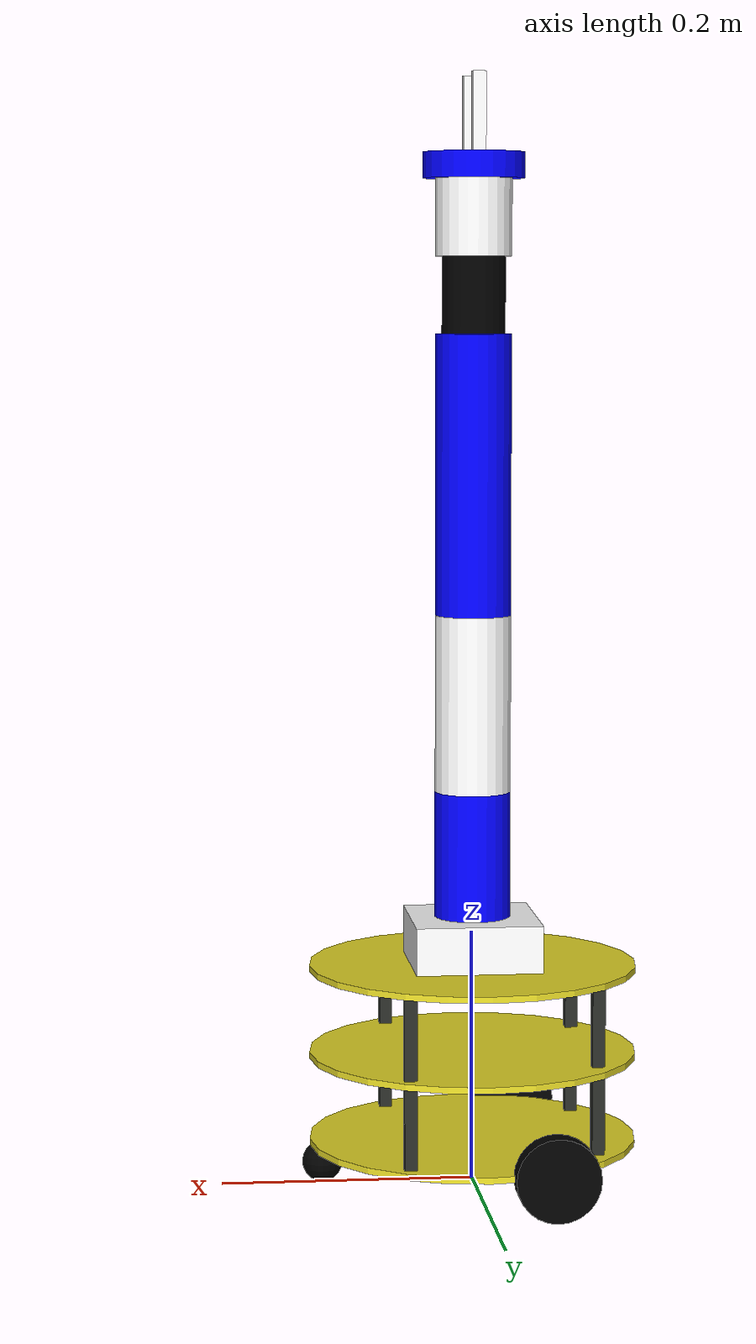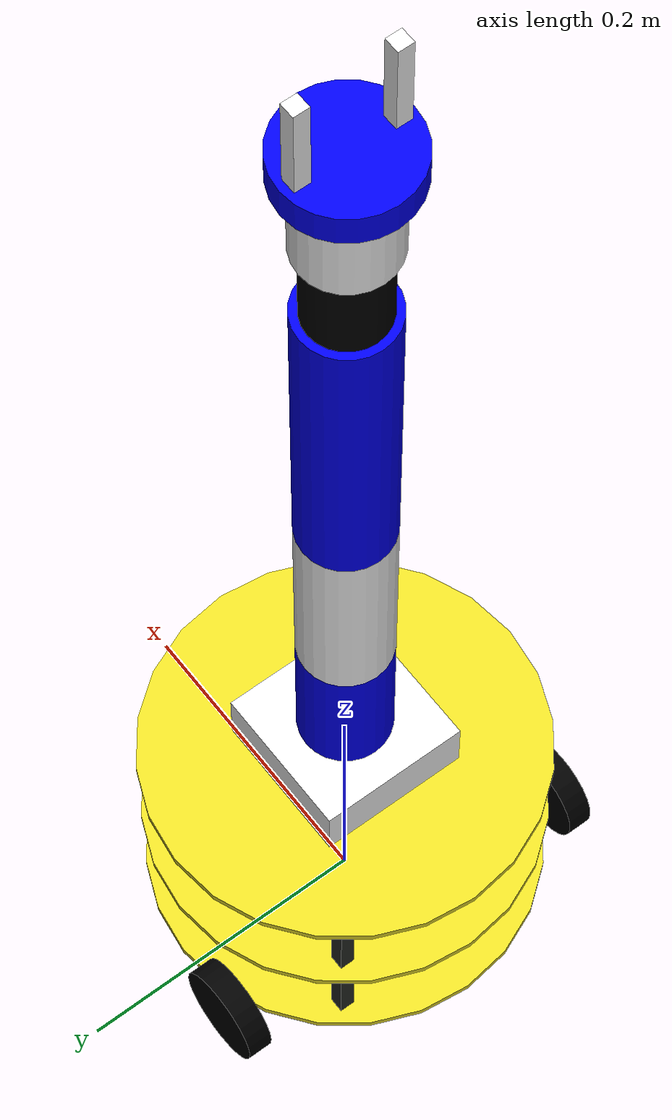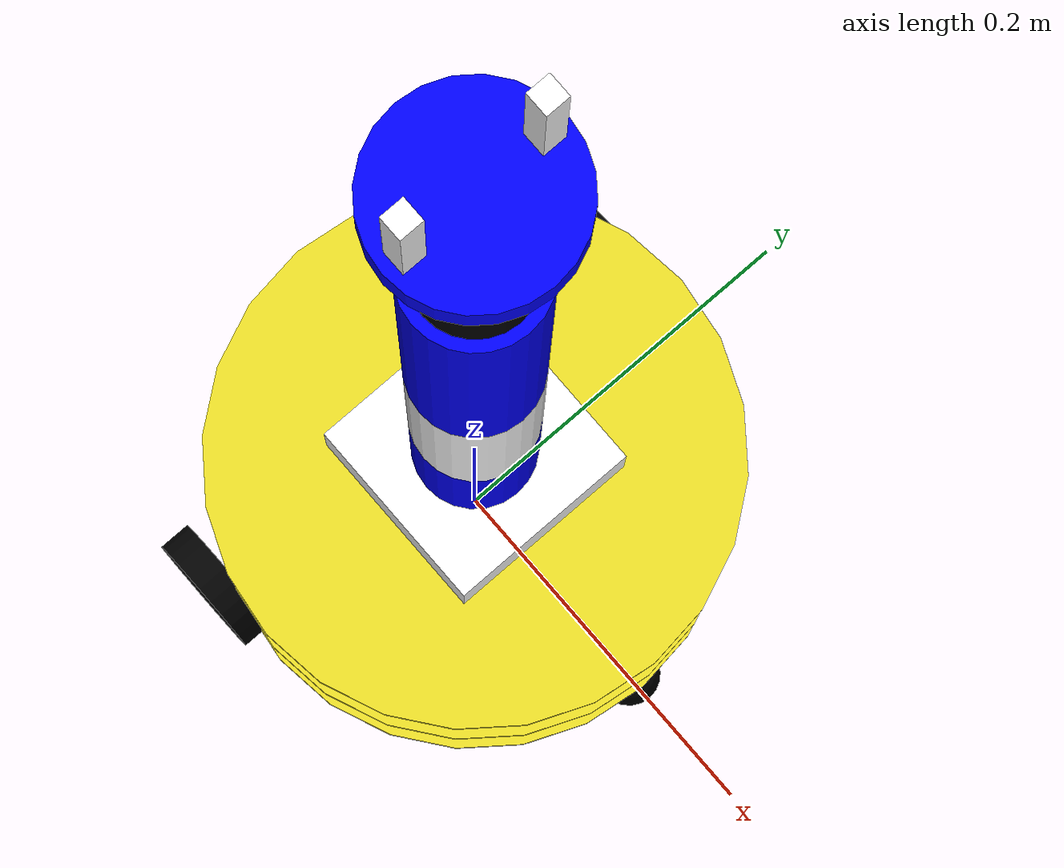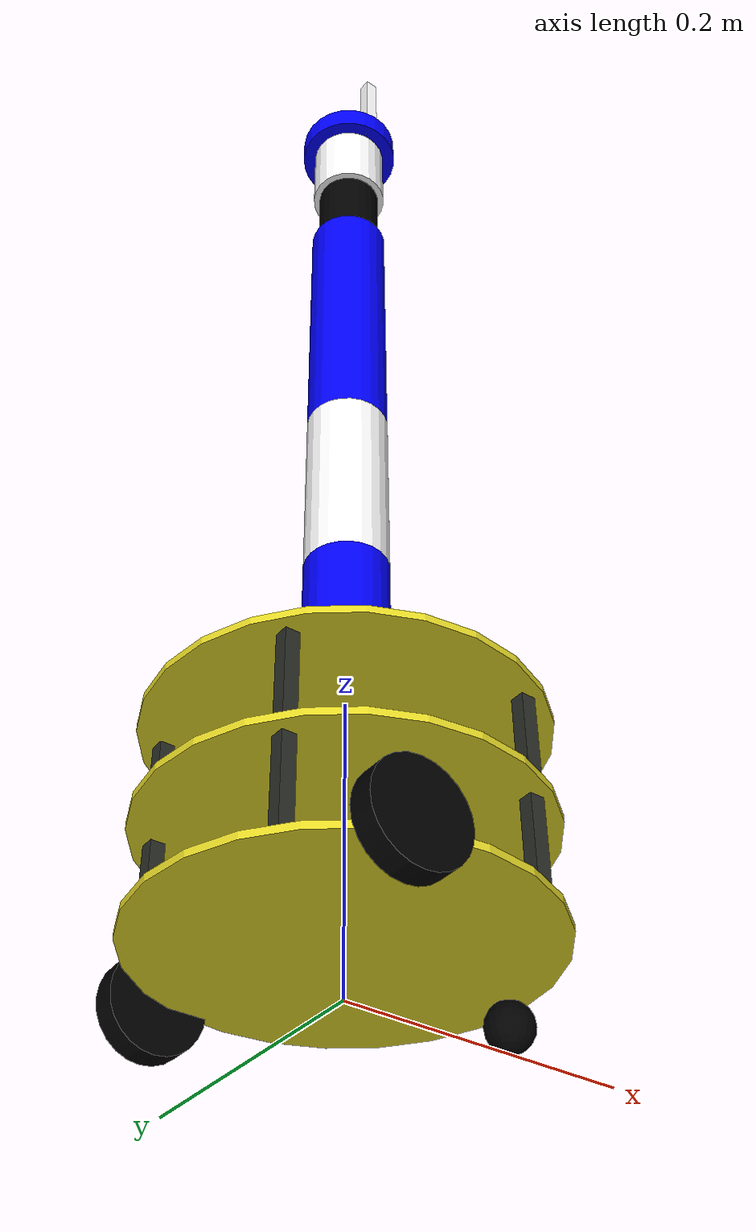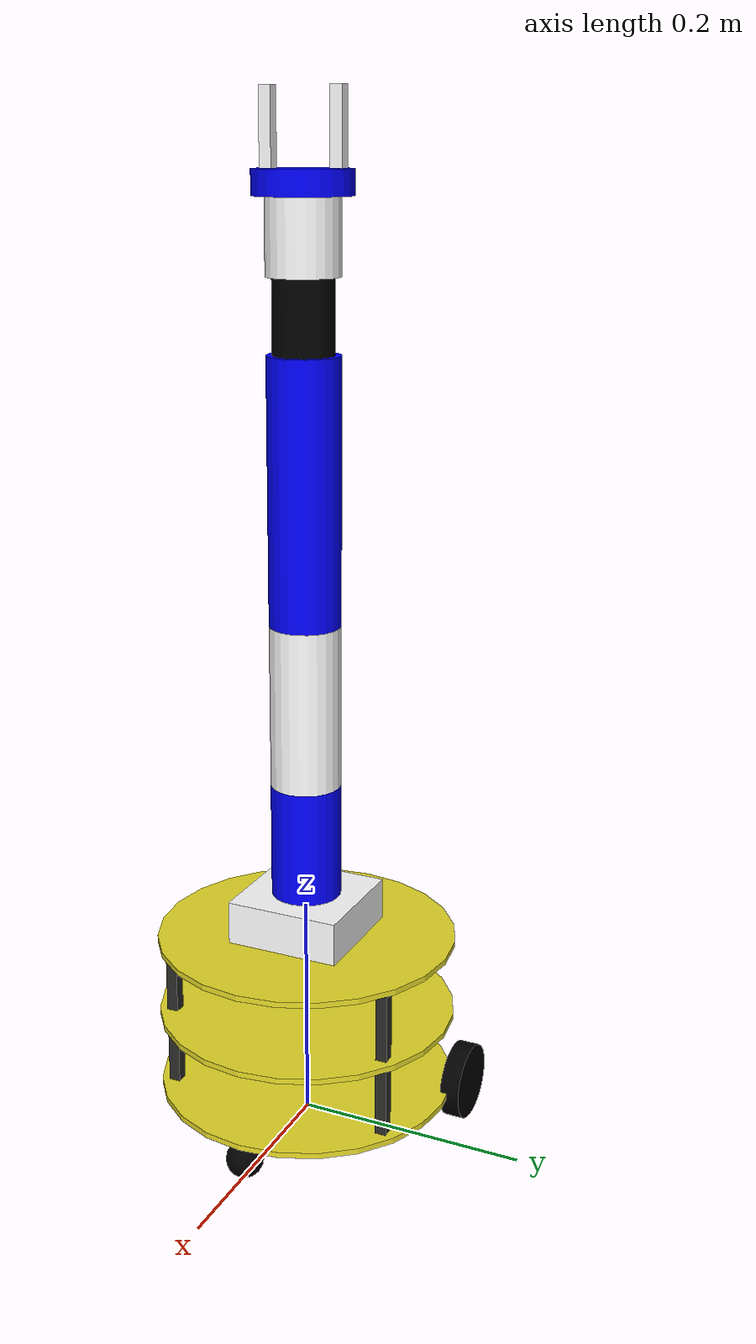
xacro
<?xml version="1.0"?>
<robot name="mrobot" xmlns:xacro="http://www.ros.org/wiki/xacro">

    <xacro:include filename="$(find armoncar_package)/urdf/mrobot_body.urdf.xacro" />

    <xacro:property name="arm_offset_x" value="0" />
    <xacro:property name="arm_offset_y" value="0" />
    <xacro:property name="arm_offset_z" value="0.02" />
    <!-- Defining the colors used in this robot -->
    <material name="Black">
        <color rgba="0 0 0 1"/>
    </material>

    <material name="White">
        <color rgba="1 1 1 1"/>
    </material>

    <material name="Blue">
        <color rgba="0 0 1 1"/>
    </material>

    <material name="Red">
        <color rgba="1 0 0 1"/>
    </material>

    <!-- Constants -->
    <xacro:property name="M_PI" value="3.14159"/>

    <!-- link1 properties -->
    <xacro:property name="link1_width" value="0.03" />
    <xacro:property name="link1_len" value="0.10" />

    <!-- link2 properties -->
    <xacro:property name="link2_width" value="0.03" />
    <xacro:property name="link2_len" value="0.14" />

    <!-- link3 properties -->
    <xacro:property name="link3_width" value="0.03" />
    <xacro:property name="link3_len" value="0.22" />

    <!-- link4 properties -->
    <xacro:property name="link4_width" value="0.025" />
    <xacro:property name="link4_len" value="0.06" />

    <!-- link5 properties -->
    <xacro:property name="link5_width" value="0.03" />
    <xacro:property name="link5_len" value="0.06" />

    <!-- link6 properties -->
    <xacro:property name="link6_width" value="0.04" />
    <xacro:property name="link6_len" value="0.02" />

    <!-- Left gripper -->
    <xacro:property name="left_gripper_len" value="0.08" />
    <xacro:property name="left_gripper_width" value="0.01" />
    <xacro:property name="left_gripper_height" value="0.01" />

    <!-- Right gripper -->
    <xacro:property name="right_gripper_len" value="0.08" />
    <xacro:property name="right_gripper_width" value="0.01" />
    <xacro:property name="right_gripper_height" value="0.01" />

    <!-- Gripper frame -->
    <xacro:property name="grasp_frame_radius" value="0.001" />

    <!-- Inertial matrix -->
    <xacro:macro name="inertial_matrix" params="mass">
        <inertial>
            <mass value="${mass}" />
            <inertia ixx="1.0" ixy="0.0" ixz="0.0" iyy="0.5" iyz="0.0" izz="1.0" />
        </inertial>
    </xacro:macro>

    <!-- MRobot机器人平台-->
    <mrobot_body/>

    <!-- Camera -->
    <joint name="arm_joint" type="fixed">
        <origin xyz="${arm_offset_x} ${arm_offset_y} ${arm_offset_z}" rpy="0 0 0" />
        <parent link="plate_2_link"/>
        <child link="base_link_of_arm"/>
    </joint>

    <!-- ///////////////////////////////////////   bottom_joint   ////////////////////////////////////////// -->

    <!-- /////////////////////////////////////   BASE LINK    ////////////////////////////////////////////// -->
    <link name="base_link_of_arm">
        <visual>
            <origin xyz="0 0 0" rpy="0 0 0" />
            <geometry>
                <box size="0.1 0.1 0.04" />
            </geometry>
            <material name="White" />
        </visual>
        <collision>
            <origin xyz="0 0 0" rpy="0 0 0" />
            <geometry>
                <box size="0.1 0.1 0.04" />
            </geometry>
        </collision>
        <xacro:inertial_matrix mass="1"/>
    </link>

    <joint name="joint1" type="revolute">
        <parent link="base_link_of_arm"/>
        <child link="link1"/>
        <origin xyz="0 0 0.02" rpy="0 ${M_PI/2} 0" />
        <axis xyz="-1 0 0" />
        <limit effort="300" velocity="1" lower="-2.96" upper="2.96"/>
        <dynamics damping="50" friction="1"/>
    </joint>

    <!-- /////////////////////////////////////   LINK1  ////////////////////////////////////////////// -->
    <link name="link1" >
        <visual>
            <origin xyz="-${link1_len/2} 0 0" rpy="0 ${M_PI/2} 0" />
            <geometry>
                <cylinder radius="${link1_width}" length="${link1_len}"/>
            </geometry>
            <material name="Blue" />
        </visual>
        <collision>
            <origin xyz="-${link1_len/2} 0 0" rpy="0 ${M_PI/2} 0" />
            <geometry>
                <cylinder radius="${link1_width}" length="${link1_len}"/>
            </geometry>
        </collision>
        <xacro:inertial_matrix mass="1"/>
    </link>

    <joint name="joint2" type="revolute">
        <parent link="link1"/>
        <child link="link2"/>
        <origin xyz="-${link1_len} 0 0.0" rpy="-${M_PI/2} 0 ${M_PI/2}" />
        <axis xyz="1 0 0" />
        <limit effort="300" velocity="1" lower="-2.35" upper="2.35" />
        <dynamics damping="50" friction="1"/>
    </joint>

    <!-- ///////////////////////////////////////   LINK2  ////////////////////////////////////////////// -->
    <link name="link2" >
        <visual>
            <origin xyz="0 0 ${link2_len/2}" rpy="0 0 0" />
            <geometry>
                <cylinder radius="${link2_width}" length="${link2_len}"/>
            </geometry>
            <material name="White" />
        </visual>

        <collision>
            <origin xyz="0 0 ${link2_len/2}" rpy="0 0 0" />
            <geometry>
                <cylinder radius="${link2_width}" length="${link2_len}"/>
            </geometry>
        </collision>
        <xacro:inertial_matrix mass="1"/>
    </link>

    <joint name="joint3" type="revolute">
        <parent link="link2"/>
        <child link="link3"/>
        <origin xyz="0 0 ${link2_len}" rpy="0 ${M_PI} 0" />
        <axis xyz="-1 0 0" />
        <limit effort="300" velocity="1" lower="-2.62" upper="2.62" />
        <dynamics damping="50" friction="1"/>
    </joint>

    <!-- /////////////////////////////////   LINK3  ///////////////////////////////////////////////////// -->
    <link name="link3" >
        <visual>
            <origin xyz="0 0 -${link3_len/2}" rpy="0 0 0" />
            <geometry>
                <cylinder radius="${link3_width}" length="${link3_len}"/>
            </geometry>
            <material name="Blue" />
        </visual>
        <collision>
            <origin xyz="0 0 -${link3_len/2}" rpy="0 0 0" />
            <geometry>
                <cylinder radius="${link3_width}" length="${link3_len}"/>
            </geometry>
        </collision>
        <xacro:inertial_matrix mass="1"/>
    </link>

    <joint name="joint4" type="revolute">
        <parent link="link3"/>
        <child link="link4"/>
        <origin xyz="0.0 0.0 -${link3_len}" rpy="0 ${M_PI/2} ${M_PI}" />
        <axis xyz="1 0 0" />
        <limit effort="300" velocity="1" lower="-2.62" upper="2.62" />
        <dynamics damping="50" friction="1"/>
    </joint>

    <!-- ///////////////////////////////////   LINK4  //////////////////////////////////////////////// -->
    <link name="link4" >
        <visual>
            <origin xyz="${link4_len/2} 0 0" rpy="0 ${M_PI/2} 0" />
            <geometry>
                <cylinder radius="${link4_width}" length="${link4_len}"/>
            </geometry>
            <material name="Black" />
        </visual>
        <collision>
            <origin xyz="${link4_len/2} 0 0" rpy="0 ${M_PI/2} 0" />
            <geometry>
                <cylinder radius="${link4_width}" length="${link4_len}"/>
            </geometry>
        </collision>
        <xacro:inertial_matrix mass="1"/>
    </link>

    <joint name="joint5" type="revolute">
        <parent link="link4"/>
        <child link="link5"/>
        <origin xyz="${link4_len} 0.0 0.0" rpy="0 ${M_PI/2} 0" />
        <axis xyz="1 0 0" />
        <limit effort="300" velocity="1" lower="-2.62" upper="2.62" />
        <dynamics damping="50" friction="1"/>
    </joint>

    <!-- //////////////////////////////////   LINK5  ///////////////////////////////////////////////// -->
    <link name="link5">
        <visual>
            <origin xyz="0 0 ${link4_len/2}" rpy="0 0 0" />
            <geometry>
                <cylinder radius="${link5_width}" length="${link5_len}"/>
            </geometry>
            <material name="White" />
        </visual>
        <collision>
            <origin xyz="0 0 ${link4_len/2} " rpy="0 0 0" />
            <geometry>
                <cylinder radius="${link5_width}" length="${link5_len}"/>
            </geometry>
        </collision>
        <xacro:inertial_matrix mass="1"/>
    </link>

    <joint name="joint6" type="revolute">
        <parent link="link5"/>
        <child link="link6"/>
        <origin xyz="0 0 ${link4_len}" rpy="${1.5*M_PI} -${M_PI/2} 0" />
        <axis xyz="1 0 0" />
        <limit effort="300" velocity="1" lower="-6.28" upper="6.28" />
        <dynamics damping="50" friction="1"/>
    </joint>

    <!-- ////////////////////////////////   LINK6  ///////////////////////////////////////////////// -->
    <link name="link6">
        <visual>
            <origin xyz="${link6_len/2} 0 0 " rpy="0 ${M_PI/2} 0" />
            <geometry>
                <cylinder radius="${link6_width}" length="${link6_len}"/>
            </geometry>
            <material name="Blue" />
        </visual>
        <collision>
            <origin xyz="${link6_len/2} 0 0" rpy="0 ${M_PI/2} 0" />
            <geometry>
                <cylinder radius="${link6_width}" length="${link6_len}"/>
            </geometry>
        </collision>
        <xacro:inertial_matrix mass="1"/>
    </link>

    <joint name="finger_joint1" type="prismatic">
        <parent link="link6"/>
        <child link="gripper_finger_link1"/>
        <origin xyz="0.0 0 0" />
        <axis xyz="0 1 0" />
        <limit effort="100" lower="0" upper="0.06" velocity="1.0"/>
        <dynamics damping="50" friction="1"/>
    </joint>

    <!-- //////////////////////////////////////   gripper   ////////////////////////////////////////////// -->
    <!-- LEFT GRIPPER AFT LINK -->
    <link name="gripper_finger_link1">
        <visual>
            <origin xyz="0.04 -0.03 0"/>
            <geometry>
                <box size="${left_gripper_len} ${left_gripper_width} ${left_gripper_height}" />
            </geometry>
            <material name="White" />
        </visual>
        <xacro:inertial_matrix mass="1"/>
    </link>

    <joint name="finger_joint2" type="fixed">
        <parent link="link6"/>
        <child link="gripper_finger_link2"/>
        <origin xyz="0.0 0 0" />
    </joint>

    <!-- RIGHT GRIPPER AFT LINK -->
    <link name="gripper_finger_link2">
        <visual>
            <origin xyz="0.04 0.03 0"/>
            <geometry>
                <box size="${right_gripper_len} ${right_gripper_width} ${right_gripper_height}" />
            </geometry>
            <material name="White" />
        </visual>
        <xacro:inertial_matrix mass="1"/>
    </link>

    <!-- Grasping frame -->
    <link name="grasping_frame"/>

    <joint name="grasping_frame_joint" type="fixed">
      <parent link="link6"/>
      <child link="grasping_frame"/>
      <origin xyz="0.08 0 0" rpy="0 0 0"/>
    </joint>

</robot>

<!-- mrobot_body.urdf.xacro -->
<robot name="mrobot" xmlns:xacro="http://www.ros.org/wiki/xacro">

    <!-- Defining the colors used in this robot -->
    <material name="Black">
        <color rgba="0 0 0 1"/>
    </material>

    <material name="White">
        <color rgba="1 1 1 1"/>
    </material>

    <material name="Blue">
        <color rgba="0 0 1 1"/>
    </material>

    <material name="Red">
        <color rgba="1 0 0 1"/>
    </material>

    <!-- PROPERTY LIST -->
    <!--All units in m-kg-s-radians unit system -->
    <xacro:property name="M_PI" value="3.1415926535897931" />

    <!-- Main body length, width, height and mass -->
    <xacro:property name="base_mass"        value="0.5" />
    <xacro:property name="base_link_radius" value="0.13"/>
    <xacro:property name="base_link_length" value="0.005"/>

    <xacro:property name="motor_x" value="-0.05"/>

    <!-- Caster radius and mass -->
    <xacro:property name="caster_radius"          value="0.016" />
    <xacro:property name="caster_mass"            value="0.01" />
    <xacro:property name="caster_joint_origin_x"  value="-0.12" />

    <!-- Wheel radius, height and mass -->
    <xacro:property name="wheel_radius" value="0.033" />
    <xacro:property name="wheel_height" value="0.017" />
    <xacro:property name="wheel_mass"   value="0.1" />

    <!-- plate height and mass -->
    <xacro:property name="plate_mass"   value="0.05"/>
    <xacro:property name="plate_height" value="0.07"/>
    <xacro:property name="standoff_x"   value="0.12"/>
    <xacro:property name="standoff_y"   value="0.10"/>

    <!-- Macro for inertia matrix -->
    <xacro:macro name="sphere_inertial_matrix" params="m r">
        <inertial>
            <mass value="${m}" />
            <inertia ixx="${2*m*r*r/5}" ixy="0" ixz="0"
                iyy="${2*m*r*r/5}" iyz="0"
                izz="${2*m*r*r/5}" />
        </inertial>
    </xacro:macro>

    <xacro:macro name="cylinder_inertial_matrix" params="m r h">
        <inertial>
            <mass value="${m}" />
            <inertia ixx="${m*(3*r*r+h*h)/12}" ixy = "0" ixz = "0"
                iyy="${m*(3*r*r+h*h)/12}" iyz = "0"
                izz="${m*r*r/2}" />
        </inertial>
    </xacro:macro>

    <xacro:macro name="box_inertial_matrix" params="m w h d">
        <inertial>
            <mass value="${m}" />
            <inertia ixx="${m*(h*h+d*d)/12}" ixy = "0" ixz = "0"
                iyy="${m*(w*w+d*d)/12}" iyz = "0"
                izz="${m*(w*w+h*h)/12}" />
        </inertial>
    </xacro:macro>

    <!-- Macro for wheel joint -->
    <xacro:macro name="wheel" params="lr translateY">
        <!-- lr: left, right -->
        <link name="wheel_${lr}_link">
            <visual>
                <origin xyz="0 0 0" rpy="${M_PI/2} 0  0 " />
                <geometry>
                    <cylinder length="${wheel_height}" radius="${wheel_radius}" />
                </geometry>
                <material name="Black" />
            </visual>
            <collision>
                <origin xyz="0 0 0" rpy="${M_PI/2} 0 0 " />
                <geometry>
                    <cylinder length="${wheel_height}" radius="${wheel_radius}" />
                </geometry>
            </collision>
            <cylinder_inertial_matrix  m="${wheel_mass}" r="${wheel_radius}" h="${wheel_height}" />
        </link>

        <gazebo reference="wheel_${lr}_link">
            <material>Gazebo/Black</material>
        </gazebo>

        <joint name="base_to_wheel_${lr}_joint" type="continuous">
            <parent link="base_link"/>
            <child link="wheel_${lr}_link"/>
            <origin xyz="${motor_x} ${translateY * base_link_radius} 0" rpy="0 0 0" />
            <axis xyz="0 1 0" rpy="0  0" />
        </joint>

        <!-- Transmission is important to link the joints and the controller -->
        <transmission name="wheel_${lr}_joint_trans">
            <type>transmission_interface/SimpleTransmission</type>
            <joint name="base_to_wheel_${lr}_joint">
		<hardwareInterface>hardware_interface/EffortJointInterface</hardwareInterface>
	    </joint>
            <actuator name="wheel_${lr}_joint_motor">
                <hardwareInterface>VelocityJointInterface</hardwareInterface>
                <mechanicalReduction>1</mechanicalReduction>
            </actuator>
        </transmission>
    </xacro:macro>

    <!-- Macro for caster joint -->
    <xacro:macro name="caster" params="fb translateX">
        <!-- fb: front, back -->
        <link name="${fb}_caster_link">
            <visual>
                <origin xyz="0 0 0 " rpy="0 0 0" />
                <geometry>
                    <sphere radius="${caster_radius}" />
                </geometry>
                <material name="Black" />
            </visual>
            <collision>
                <geometry>
                    <sphere radius="${caster_radius}" />
                </geometry>
                <origin xyz="0 0 0 " rpy="0 0 0" />
            </collision>
            <sphere_inertial_matrix  m="${caster_mass}" r="${caster_radius}" />
        </link>

        <gazebo reference="${fb}_caster_link">
            <material>Gazebo/Black</material>
        </gazebo>

        <joint name="base_to_${fb}_caster_joint" type="fixed">
            <parent link="base_link"/>
            <child link="${fb}_caster_link"/>
            <origin xyz="${translateX*caster_joint_origin_x} 0 ${-caster_radius}" rpy="0 0 0"/>
        </joint>
    </xacro:macro>

    <!-- Macro for plate joint -->
    <xacro:macro name="plate" params="num parent">
        <link name="plate_${num}_link">
            <cylinder_inertial_matrix  m="0.1" r="${base_link_radius}" h="${base_link_length}" />

            <visual>
                <origin xyz=" 0 0 0 " rpy="0 0 0" />
                <geometry>
                    <cylinder length="${base_link_length}" radius="${base_link_radius}"/>
                </geometry>
                <material name="yellow"/>
            </visual>

            <collision>
                <origin xyz="0.0 0.0 0.0" rpy="0 0 0" />
                <geometry>
                    <cylinder length="${base_link_length}" radius="${base_link_radius}"/>
                </geometry>
            </collision>
        </link>
        <gazebo reference="plate_${num}_link">
            <material>Gazebo/Blue</material>
        </gazebo>
        <joint name="plate_${num}_joint" type="fixed">
            <origin xyz="0 0 ${plate_height}" rpy="0 0 0" />
            <parent link="${parent}"/>
            <child link="plate_${num}_link" />
        </joint>
    </xacro:macro>

    <!-- Macro for standoff joint -->
    <xacro:macro name="mrobot_standoff_2in" params="parent number x_loc y_loc z_loc">
        <joint name="standoff_2in_${number}_joint" type="fixed">
            <origin xyz="${x_loc} ${y_loc} ${z_loc}" rpy="0 0 0" />
            <parent link="${parent}"/>
            <child link="standoff_2in_${number}_link" />
        </joint>

        <link name="standoff_2in_${number}_link">
            <inertial>
                <mass value="0.001" />
                <origin xyz="0 0 0" />
                <inertia ixx="0.0001" ixy="0.0" ixz="0.0"
          iyy="0.0001" iyz="0.0"
          izz="0.0001" />
            </inertial>

            <visual>
                <origin xyz=" 0 0 0 " rpy="0 0 0" />
                <geometry>
                    <box size="0.01 0.01 0.07" />
                </geometry>
                <material name="black">
                    <color rgba="0.16 0.17 0.15 0.9"/>
                </material>
            </visual>

            <collision>
                <origin xyz="0.0 0.0 0.0" rpy="0 0 0" />
                <geometry>
                    <box size="0.01 0.01 0.07" />
                </geometry>
            </collision>
        </link>
    </xacro:macro>

    <!-- BASE-FOOTPRINT -->
    <!-- base_footprint is a fictitious link(frame) that is on the ground right below base_link origin -->
    <xacro:macro name="mrobot_body">
        <link name="base_footprint">
            <visual>
                <origin xyz="0 0 0" rpy="0 0 0" />
                <geometry>
                    <box size="0.001 0.001 0.001" />
                </geometry>
            </visual>
        </link>

        <joint name="base_footprint_joint" type="fixed">
            <origin xyz="0 0 ${wheel_radius}" rpy="0 0 0" />
            <parent link="base_footprint"/>
            <child link="base_link" />
        </joint>

        <!-- BASE-LINK -->
        <!--Actual body/chassis of the robot-->
        <link name="base_link">
            <cylinder_inertial_matrix  m="${base_mass}" r="${base_link_radius}" h="${base_link_length}" />
            <visual>
                <origin xyz=" 0 0 0" rpy="0 0 0" />
                <geometry>
                    <cylinder length="${base_link_length}" radius="${base_link_radius}"/>
                </geometry>
                <material name="yellow" />
            </visual>

            <collision>
                <origin xyz="0 0 0" rpy="0 0 0" />
                <geometry>
                    <cylinder length="${base_link_length}" radius="${base_link_radius}"/>
                </geometry>
            </collision>
        </link>
        <gazebo reference="base_link">
            <material>Gazebo/Blue</material>
        </gazebo>

        <!-- Wheel Definitions -->
        <wheel lr="right"  translateY="1" />
        <wheel lr="left"  translateY="-1" />

        <!-- Casters Definitions -->
        <caster fb="front"  translateX="-1" />

        <!-- plates and standoff Definitions -->
        <mrobot_standoff_2in parent="base_link" number="1" x_loc="-${standoff_x/2 + 0.03}" y_loc="-${standoff_y - 0.03}" z_loc="${plate_height/2}"/>
        <mrobot_standoff_2in parent="base_link" number="2" x_loc="-${standoff_x/2 + 0.03}" y_loc="${standoff_y - 0.03}" z_loc="${plate_height/2}"/>
        <mrobot_standoff_2in parent="base_link" number="3" x_loc="${standoff_x/2}" y_loc="-${standoff_y}" z_loc="${plate_height/2}"/>
        <mrobot_standoff_2in parent="base_link" number="4" x_loc="${standoff_x/2}" y_loc="${standoff_y}" z_loc="${plate_height/2}"/>
        <mrobot_standoff_2in parent="standoff_2in_1_link" number="5" x_loc="0" y_loc="0" z_loc="${plate_height}"/>
        <mrobot_standoff_2in parent="standoff_2in_2_link" number="6" x_loc="0" y_loc="0" z_loc="${plate_height}"/>
        <mrobot_standoff_2in parent="standoff_2in_3_link" number="7" x_loc="0" y_loc="0" z_loc="${plate_height}"/>
        <mrobot_standoff_2in parent="standoff_2in_4_link" number="8" x_loc="0" y_loc="0" z_loc="${plate_height}"/>

        <!-- plate Definitions -->
        <plate num="1"  parent="base_link" />
        <plate num="2"  parent="plate_1_link" />

        <!-- controller -->
        <gazebo>
            <plugin name="differential_drive_controller" filename="libgazebo_ros_diff_drive.so">
                <rosDebugLevel>Debug</rosDebugLevel>
                <publishWheelTF>true</publishWheelTF>
                <robotNamespace>/</robotNamespace>
                <publishTf>1</publishTf>
                <publishWheelJointState>true</publishWheelJointState>
                <alwaysOn>true</alwaysOn>
                <updateRate>100.0</updateRate>
                <legacyMode>true</legacyMode>
                <leftJoint>base_to_wheel_left_joint</leftJoint>
                <rightJoint>base_to_wheel_right_joint</rightJoint>
                <wheelSeparation>${base_link_radius*2}</wheelSeparation>
                <wheelDiameter>${2*wheel_radius}</wheelDiameter>
                <broadcastTF>1</broadcastTF>
                <wheelTorque>30</wheelTorque>
                <wheelAcceleration>1.8</wheelAcceleration>
                <commandTopic>cmd_vel</commandTopic>
                <odometryFrame>odom</odometryFrame>
                <odometryTopic>odom</odometryTopic>
                <robotBaseFrame>base_footprint</robotBaseFrame>
            </plugin>
        </gazebo>

    </xacro:macro>
</robot>
